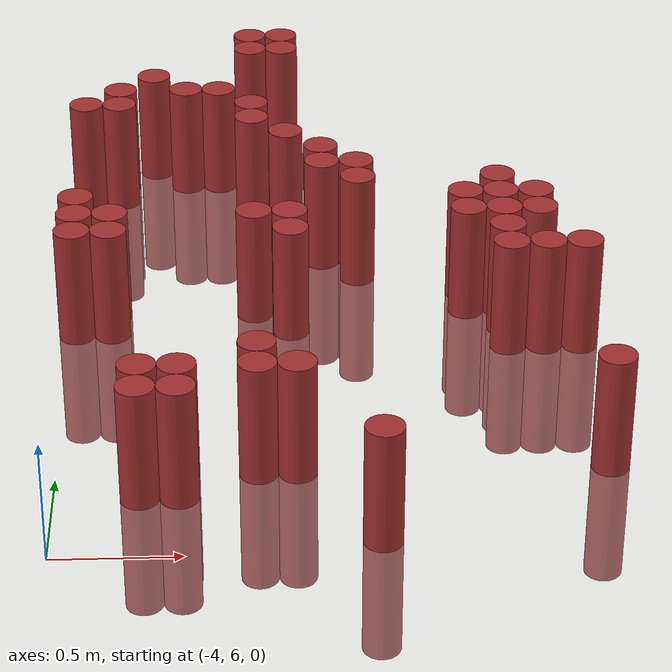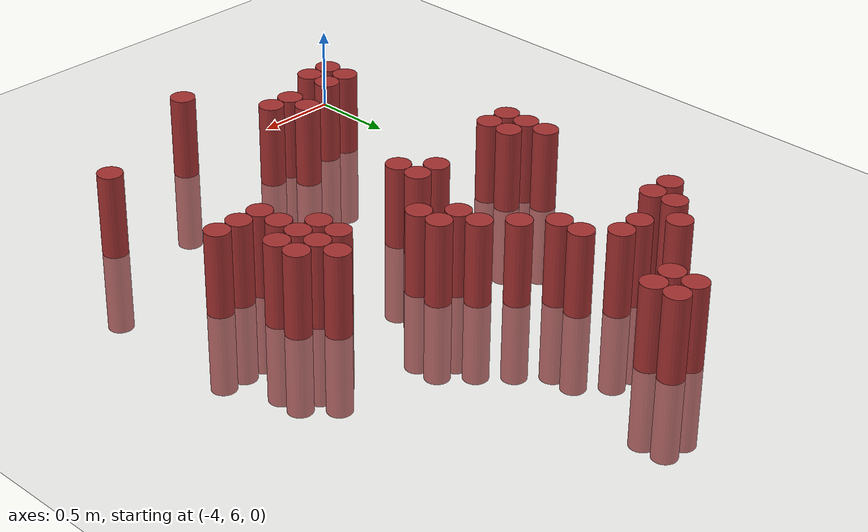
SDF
<sdf version="1.6">
 <world name="default">
  <model name="ground_plane">
   <static>1</static>
   <link name="link">
    <collision name="collision">
     <geometry><plane><normal>0 0 1</normal><size>100 100</size></plane></geometry>
     <surface><friction><ode><mu>100</mu><mu2>50</mu2></ode></friction></surface>
    </collision>
    <visual name="visual">
     <cast_shadows>0</cast_shadows>
     <geometry><plane><normal>0 0 1</normal><size>100 100</size></plane></geometry>
     <material>
      <script><uri>file://media/materials/scripts/gazebo.material</uri><name>Gazebo/Grey</name></script>
     </material>
    </visual>
   </link>
  </model>
  <model name="unit_cylinder_157">
   <static>1</static>
   <pose>-3.975000 7.575000 0.000000 0.000000 0.000000 0.000000</pose>
   <link name="link">
    <inertial>
     <mass>1</mass>
     <inertia><ixx>0.145833</ixx><ixy>0</ixy><ixz>0</ixz><iyy>0.145833</iyy><iyz>0</iyz><izz>0.125</izz></inertia>
    </inertial>
    <collision name="collision">
     <geometry><cylinder><radius>0.075000</radius><length>1</length></cylinder></geometry>
    </collision>
    <visual name="visual">
     <geometry><cylinder><radius>0.075000</radius><length>1</length></cylinder></geometry>
     <material>
      <ambient>0.648000 0.192000 0.192000 1</ambient>
      <diffuse>0.648000 0.192000 0.192000 1</diffuse>
     </material>
     <material>
      <script><name>Gazebo/Grey</name><uri>file://media/materials/scripts/gazebo.material</uri></script>
     </material>
    </visual>
   </link>
  </model>
  <model name="unit_cylinder_158">
   <static>1</static>
   <pose>-3.975000 7.725000 0.000000 0.000000 0.000000 0.000000</pose>
   <link name="link">
    <inertial>
     <mass>1</mass>
     <inertia><ixx>0.145833</ixx><ixy>0</ixy><ixz>0</ixz><iyy>0.145833</iyy><iyz>0</iyz><izz>0.125</izz></inertia>
    </inertial>
    <collision name="collision">
     <geometry><cylinder><radius>0.075000</radius><length>1</length></cylinder></geometry>
    </collision>
    <visual name="visual">
     <geometry><cylinder><radius>0.075000</radius><length>1</length></cylinder></geometry>
     <material>
      <ambient>0.648000 0.192000 0.192000 1</ambient>
      <diffuse>0.648000 0.192000 0.192000 1</diffuse>
     </material>
     <material>
      <script><name>Gazebo/Grey</name><uri>file://media/materials/scripts/gazebo.material</uri></script>
     </material>
    </visual>
   </link>
  </model>
  <model name="unit_cylinder_159">
   <static>1</static>
   <pose>-3.975000 7.875000 0.000000 0.000000 0.000000 0.000000</pose>
   <link name="link">
    <inertial>
     <mass>1</mass>
     <inertia><ixx>0.145833</ixx><ixy>0</ixy><ixz>0</ixz><iyy>0.145833</iyy><iyz>0</iyz><izz>0.125</izz></inertia>
    </inertial>
    <collision name="collision">
     <geometry><cylinder><radius>0.075000</radius><length>1</length></cylinder></geometry>
    </collision>
    <visual name="visual">
     <geometry><cylinder><radius>0.075000</radius><length>1</length></cylinder></geometry>
     <material>
      <ambient>0.648000 0.192000 0.192000 1</ambient>
      <diffuse>0.648000 0.192000 0.192000 1</diffuse>
     </material>
     <material>
      <script><name>Gazebo/Grey</name><uri>file://media/materials/scripts/gazebo.material</uri></script>
     </material>
    </visual>
   </link>
  </model>
  <model name="unit_cylinder_160">
   <static>1</static>
   <pose>-3.975000 8.775000 0.000000 0.000000 0.000000 0.000000</pose>
   <link name="link">
    <inertial>
     <mass>1</mass>
     <inertia><ixx>0.145833</ixx><ixy>0</ixy><ixz>0</ixz><iyy>0.145833</iyy><iyz>0</iyz><izz>0.125</izz></inertia>
    </inertial>
    <collision name="collision">
     <geometry><cylinder><radius>0.075000</radius><length>1</length></cylinder></geometry>
    </collision>
    <visual name="visual">
     <geometry><cylinder><radius>0.075000</radius><length>1</length></cylinder></geometry>
     <material>
      <ambient>0.648000 0.192000 0.192000 1</ambient>
      <diffuse>0.648000 0.192000 0.192000 1</diffuse>
     </material>
     <material>
      <script><name>Gazebo/Grey</name><uri>file://media/materials/scripts/gazebo.material</uri></script>
     </material>
    </visual>
   </link>
  </model>
  <model name="unit_cylinder_163">
   <static>1</static>
   <pose>-3.825000 7.575000 0.000000 0.000000 0.000000 0.000000</pose>
   <link name="link">
    <inertial>
     <mass>1</mass>
     <inertia><ixx>0.145833</ixx><ixy>0</ixy><ixz>0</ixz><iyy>0.145833</iyy><iyz>0</iyz><izz>0.125</izz></inertia>
    </inertial>
    <collision name="collision">
     <geometry><cylinder><radius>0.075000</radius><length>1</length></cylinder></geometry>
    </collision>
    <visual name="visual">
     <geometry><cylinder><radius>0.075000</radius><length>1</length></cylinder></geometry>
     <material>
      <ambient>0.648000 0.192000 0.192000 1</ambient>
      <diffuse>0.648000 0.192000 0.192000 1</diffuse>
     </material>
     <material>
      <script><name>Gazebo/Grey</name><uri>file://media/materials/scripts/gazebo.material</uri></script>
     </material>
    </visual>
   </link>
  </model>
  <model name="unit_cylinder_164">
   <static>1</static>
   <pose>-3.825000 7.725000 0.000000 0.000000 0.000000 0.000000</pose>
   <link name="link">
    <inertial>
     <mass>1</mass>
     <inertia><ixx>0.145833</ixx><ixy>0</ixy><ixz>0</ixz><iyy>0.145833</iyy><iyz>0</iyz><izz>0.125</izz></inertia>
    </inertial>
    <collision name="collision">
     <geometry><cylinder><radius>0.075000</radius><length>1</length></cylinder></geometry>
    </collision>
    <visual name="visual">
     <geometry><cylinder><radius>0.075000</radius><length>1</length></cylinder></geometry>
     <material>
      <ambient>0.648000 0.192000 0.192000 1</ambient>
      <diffuse>0.648000 0.192000 0.192000 1</diffuse>
     </material>
     <material>
      <script><name>Gazebo/Grey</name><uri>file://media/materials/scripts/gazebo.material</uri></script>
     </material>
    </visual>
   </link>
  </model>
  <model name="unit_cylinder_165">
   <static>1</static>
   <pose>-3.825000 8.775000 0.000000 0.000000 0.000000 0.000000</pose>
   <link name="link">
    <inertial>
     <mass>1</mass>
     <inertia><ixx>0.145833</ixx><ixy>0</ixy><ixz>0</ixz><iyy>0.145833</iyy><iyz>0</iyz><izz>0.125</izz></inertia>
    </inertial>
    <collision name="collision">
     <geometry><cylinder><radius>0.075000</radius><length>1</length></cylinder></geometry>
    </collision>
    <visual name="visual">
     <geometry><cylinder><radius>0.075000</radius><length>1</length></cylinder></geometry>
     <material>
      <ambient>0.648000 0.192000 0.192000 1</ambient>
      <diffuse>0.648000 0.192000 0.192000 1</diffuse>
     </material>
     <material>
      <script><name>Gazebo/Grey</name><uri>file://media/materials/scripts/gazebo.material</uri></script>
     </material>
    </visual>
   </link>
  </model>
  <model name="unit_cylinder_166">
   <static>1</static>
   <pose>-3.825000 8.925000 0.000000 0.000000 0.000000 0.000000</pose>
   <link name="link">
    <inertial>
     <mass>1</mass>
     <inertia><ixx>0.145833</ixx><ixy>0</ixy><ixz>0</ixz><iyy>0.145833</iyy><iyz>0</iyz><izz>0.125</izz></inertia>
    </inertial>
    <collision name="collision">
     <geometry><cylinder><radius>0.075000</radius><length>1</length></cylinder></geometry>
    </collision>
    <visual name="visual">
     <geometry><cylinder><radius>0.075000</radius><length>1</length></cylinder></geometry>
     <material>
      <ambient>0.648000 0.192000 0.192000 1</ambient>
      <diffuse>0.648000 0.192000 0.192000 1</diffuse>
     </material>
     <material>
      <script><name>Gazebo/Grey</name><uri>file://media/materials/scripts/gazebo.material</uri></script>
     </material>
    </visual>
   </link>
  </model>
  <model name="unit_cylinder_167">
   <static>1</static>
   <pose>-3.675000 6.375000 0.000000 0.000000 0.000000 0.000000</pose>
   <link name="link">
    <inertial>
     <mass>1</mass>
     <inertia><ixx>0.145833</ixx><ixy>0</ixy><ixz>0</ixz><iyy>0.145833</iyy><iyz>0</iyz><izz>0.125</izz></inertia>
    </inertial>
    <collision name="collision">
     <geometry><cylinder><radius>0.075000</radius><length>1</length></cylinder></geometry>
    </collision>
    <visual name="visual">
     <geometry><cylinder><radius>0.075000</radius><length>1</length></cylinder></geometry>
     <material>
      <ambient>0.648000 0.192000 0.192000 1</ambient>
      <diffuse>0.648000 0.192000 0.192000 1</diffuse>
     </material>
     <material>
      <script><name>Gazebo/Grey</name><uri>file://media/materials/scripts/gazebo.material</uri></script>
     </material>
    </visual>
   </link>
  </model>
  <model name="unit_cylinder_168">
   <static>1</static>
   <pose>-3.675000 6.525000 0.000000 0.000000 0.000000 0.000000</pose>
   <link name="link">
    <inertial>
     <mass>1</mass>
     <inertia><ixx>0.145833</ixx><ixy>0</ixy><ixz>0</ixz><iyy>0.145833</iyy><iyz>0</iyz><izz>0.125</izz></inertia>
    </inertial>
    <collision name="collision">
     <geometry><cylinder><radius>0.075000</radius><length>1</length></cylinder></geometry>
    </collision>
    <visual name="visual">
     <geometry><cylinder><radius>0.075000</radius><length>1</length></cylinder></geometry>
     <material>
      <ambient>0.648000 0.192000 0.192000 1</ambient>
      <diffuse>0.648000 0.192000 0.192000 1</diffuse>
     </material>
     <material>
      <script><name>Gazebo/Grey</name><uri>file://media/materials/scripts/gazebo.material</uri></script>
     </material>
    </visual>
   </link>
  </model>
  <model name="unit_cylinder_169">
   <static>1</static>
   <pose>-3.675000 9.075000 0.000000 0.000000 0.000000 0.000000</pose>
   <link name="link">
    <inertial>
     <mass>1</mass>
     <inertia><ixx>0.145833</ixx><ixy>0</ixy><ixz>0</ixz><iyy>0.145833</iyy><iyz>0</iyz><izz>0.125</izz></inertia>
    </inertial>
    <collision name="collision">
     <geometry><cylinder><radius>0.075000</radius><length>1</length></cylinder></geometry>
    </collision>
    <visual name="visual">
     <geometry><cylinder><radius>0.075000</radius><length>1</length></cylinder></geometry>
     <material>
      <ambient>0.648000 0.192000 0.192000 1</ambient>
      <diffuse>0.648000 0.192000 0.192000 1</diffuse>
     </material>
     <material>
      <script><name>Gazebo/Grey</name><uri>file://media/materials/scripts/gazebo.material</uri></script>
     </material>
    </visual>
   </link>
  </model>
  <model name="unit_cylinder_170">
   <static>1</static>
   <pose>-3.525000 6.375000 0.000000 0.000000 0.000000 0.000000</pose>
   <link name="link">
    <inertial>
     <mass>1</mass>
     <inertia><ixx>0.145833</ixx><ixy>0</ixy><ixz>0</ixz><iyy>0.145833</iyy><iyz>0</iyz><izz>0.125</izz></inertia>
    </inertial>
    <collision name="collision">
     <geometry><cylinder><radius>0.075000</radius><length>1</length></cylinder></geometry>
    </collision>
    <visual name="visual">
     <geometry><cylinder><radius>0.075000</radius><length>1</length></cylinder></geometry>
     <material>
      <ambient>0.648000 0.192000 0.192000 1</ambient>
      <diffuse>0.648000 0.192000 0.192000 1</diffuse>
     </material>
     <material>
      <script><name>Gazebo/Grey</name><uri>file://media/materials/scripts/gazebo.material</uri></script>
     </material>
    </visual>
   </link>
  </model>
  <model name="unit_cylinder_171">
   <static>1</static>
   <pose>-3.525000 6.525000 0.000000 0.000000 0.000000 0.000000</pose>
   <link name="link">
    <inertial>
     <mass>1</mass>
     <inertia><ixx>0.145833</ixx><ixy>0</ixy><ixz>0</ixz><iyy>0.145833</iyy><iyz>0</iyz><izz>0.125</izz></inertia>
    </inertial>
    <collision name="collision">
     <geometry><cylinder><radius>0.075000</radius><length>1</length></cylinder></geometry>
    </collision>
    <visual name="visual">
     <geometry><cylinder><radius>0.075000</radius><length>1</length></cylinder></geometry>
     <material>
      <ambient>0.648000 0.192000 0.192000 1</ambient>
      <diffuse>0.648000 0.192000 0.192000 1</diffuse>
     </material>
     <material>
      <script><name>Gazebo/Grey</name><uri>file://media/materials/scripts/gazebo.material</uri></script>
     </material>
    </visual>
   </link>
  </model>
  <model name="unit_cylinder_172">
   <static>1</static>
   <pose>-3.525000 8.925000 0.000000 0.000000 0.000000 0.000000</pose>
   <link name="link">
    <inertial>
     <mass>1</mass>
     <inertia><ixx>0.145833</ixx><ixy>0</ixy><ixz>0</ixz><iyy>0.145833</iyy><iyz>0</iyz><izz>0.125</izz></inertia>
    </inertial>
    <collision name="collision">
     <geometry><cylinder><radius>0.075000</radius><length>1</length></cylinder></geometry>
    </collision>
    <visual name="visual">
     <geometry><cylinder><radius>0.075000</radius><length>1</length></cylinder></geometry>
     <material>
      <ambient>0.648000 0.192000 0.192000 1</ambient>
      <diffuse>0.648000 0.192000 0.192000 1</diffuse>
     </material>
     <material>
      <script><name>Gazebo/Grey</name><uri>file://media/materials/scripts/gazebo.material</uri></script>
     </material>
    </visual>
   </link>
  </model>
  <model name="unit_cylinder_173">
   <static>1</static>
   <pose>-3.375000 8.925000 0.000000 0.000000 0.000000 0.000000</pose>
   <link name="link">
    <inertial>
     <mass>1</mass>
     <inertia><ixx>0.145833</ixx><ixy>0</ixy><ixz>0</ixz><iyy>0.145833</iyy><iyz>0</iyz><izz>0.125</izz></inertia>
    </inertial>
    <collision name="collision">
     <geometry><cylinder><radius>0.075000</radius><length>1</length></cylinder></geometry>
    </collision>
    <visual name="visual">
     <geometry><cylinder><radius>0.075000</radius><length>1</length></cylinder></geometry>
     <material>
      <ambient>0.648000 0.192000 0.192000 1</ambient>
      <diffuse>0.648000 0.192000 0.192000 1</diffuse>
     </material>
     <material>
      <script><name>Gazebo/Grey</name><uri>file://media/materials/scripts/gazebo.material</uri></script>
     </material>
    </visual>
   </link>
  </model>
  <model name="unit_cylinder_175">
   <static>1</static>
   <pose>-3.225000 6.525000 0.000000 0.000000 0.000000 0.000000</pose>
   <link name="link">
    <inertial>
     <mass>1</mass>
     <inertia><ixx>0.145833</ixx><ixy>0</ixy><ixz>0</ixz><iyy>0.145833</iyy><iyz>0</iyz><izz>0.125</izz></inertia>
    </inertial>
    <collision name="collision">
     <geometry><cylinder><radius>0.075000</radius><length>1</length></cylinder></geometry>
    </collision>
    <visual name="visual">
     <geometry><cylinder><radius>0.075000</radius><length>1</length></cylinder></geometry>
     <material>
      <ambient>0.648000 0.192000 0.192000 1</ambient>
      <diffuse>0.648000 0.192000 0.192000 1</diffuse>
     </material>
     <material>
      <script><name>Gazebo/Grey</name><uri>file://media/materials/scripts/gazebo.material</uri></script>
     </material>
    </visual>
   </link>
  </model>
  <model name="unit_cylinder_176">
   <static>1</static>
   <pose>-3.225000 6.675000 0.000000 0.000000 0.000000 0.000000</pose>
   <link name="link">
    <inertial>
     <mass>1</mass>
     <inertia><ixx>0.145833</ixx><ixy>0</ixy><ixz>0</ixz><iyy>0.145833</iyy><iyz>0</iyz><izz>0.125</izz></inertia>
    </inertial>
    <collision name="collision">
     <geometry><cylinder><radius>0.075000</radius><length>1</length></cylinder></geometry>
    </collision>
    <visual name="visual">
     <geometry><cylinder><radius>0.075000</radius><length>1</length></cylinder></geometry>
     <material>
      <ambient>0.648000 0.192000 0.192000 1</ambient>
      <diffuse>0.648000 0.192000 0.192000 1</diffuse>
     </material>
     <material>
      <script><name>Gazebo/Grey</name><uri>file://media/materials/scripts/gazebo.material</uri></script>
     </material>
    </visual>
   </link>
  </model>
  <model name="unit_cylinder_177">
   <static>1</static>
   <pose>-3.225000 7.725000 0.000000 0.000000 0.000000 0.000000</pose>
   <link name="link">
    <inertial>
     <mass>1</mass>
     <inertia><ixx>0.145833</ixx><ixy>0</ixy><ixz>0</ixz><iyy>0.145833</iyy><iyz>0</iyz><izz>0.125</izz></inertia>
    </inertial>
    <collision name="collision">
     <geometry><cylinder><radius>0.075000</radius><length>1</length></cylinder></geometry>
    </collision>
    <visual name="visual">
     <geometry><cylinder><radius>0.075000</radius><length>1</length></cylinder></geometry>
     <material>
      <ambient>0.648000 0.192000 0.192000 1</ambient>
      <diffuse>0.648000 0.192000 0.192000 1</diffuse>
     </material>
     <material>
      <script><name>Gazebo/Grey</name><uri>file://media/materials/scripts/gazebo.material</uri></script>
     </material>
    </visual>
   </link>
  </model>
  <model name="unit_cylinder_178">
   <static>1</static>
   <pose>-3.225000 8.625000 0.000000 0.000000 0.000000 0.000000</pose>
   <link name="link">
    <inertial>
     <mass>1</mass>
     <inertia><ixx>0.145833</ixx><ixy>0</ixy><ixz>0</ixz><iyy>0.145833</iyy><iyz>0</iyz><izz>0.125</izz></inertia>
    </inertial>
    <collision name="collision">
     <geometry><cylinder><radius>0.075000</radius><length>1</length></cylinder></geometry>
    </collision>
    <visual name="visual">
     <geometry><cylinder><radius>0.075000</radius><length>1</length></cylinder></geometry>
     <material>
      <ambient>0.648000 0.192000 0.192000 1</ambient>
      <diffuse>0.648000 0.192000 0.192000 1</diffuse>
     </material>
     <material>
      <script><name>Gazebo/Grey</name><uri>file://media/materials/scripts/gazebo.material</uri></script>
     </material>
    </visual>
   </link>
  </model>
  <model name="unit_cylinder_179">
   <static>1</static>
   <pose>-3.225000 8.775000 0.000000 0.000000 0.000000 0.000000</pose>
   <link name="link">
    <inertial>
     <mass>1</mass>
     <inertia><ixx>0.145833</ixx><ixy>0</ixy><ixz>0</ixz><iyy>0.145833</iyy><iyz>0</iyz><izz>0.125</izz></inertia>
    </inertial>
    <collision name="collision">
     <geometry><cylinder><radius>0.075000</radius><length>1</length></cylinder></geometry>
    </collision>
    <visual name="visual">
     <geometry><cylinder><radius>0.075000</radius><length>1</length></cylinder></geometry>
     <material>
      <ambient>0.648000 0.192000 0.192000 1</ambient>
      <diffuse>0.648000 0.192000 0.192000 1</diffuse>
     </material>
     <material>
      <script><name>Gazebo/Grey</name><uri>file://media/materials/scripts/gazebo.material</uri></script>
     </material>
    </visual>
   </link>
  </model>
  <model name="unit_cylinder_180">
   <static>1</static>
   <pose>-3.225000 9.375000 0.000000 0.000000 0.000000 0.000000</pose>
   <link name="link">
    <inertial>
     <mass>1</mass>
     <inertia><ixx>0.145833</ixx><ixy>0</ixy><ixz>0</ixz><iyy>0.145833</iyy><iyz>0</iyz><izz>0.125</izz></inertia>
    </inertial>
    <collision name="collision">
     <geometry><cylinder><radius>0.075000</radius><length>1</length></cylinder></geometry>
    </collision>
    <visual name="visual">
     <geometry><cylinder><radius>0.075000</radius><length>1</length></cylinder></geometry>
     <material>
      <ambient>0.648000 0.192000 0.192000 1</ambient>
      <diffuse>0.648000 0.192000 0.192000 1</diffuse>
     </material>
     <material>
      <script><name>Gazebo/Grey</name><uri>file://media/materials/scripts/gazebo.material</uri></script>
     </material>
    </visual>
   </link>
  </model>
  <model name="unit_cylinder_181">
   <static>1</static>
   <pose>-3.225000 9.525000 0.000000 0.000000 0.000000 0.000000</pose>
   <link name="link">
    <inertial>
     <mass>1</mass>
     <inertia><ixx>0.145833</ixx><ixy>0</ixy><ixz>0</ixz><iyy>0.145833</iyy><iyz>0</iyz><izz>0.125</izz></inertia>
    </inertial>
    <collision name="collision">
     <geometry><cylinder><radius>0.075000</radius><length>1</length></cylinder></geometry>
    </collision>
    <visual name="visual">
     <geometry><cylinder><radius>0.075000</radius><length>1</length></cylinder></geometry>
     <material>
      <ambient>0.648000 0.192000 0.192000 1</ambient>
      <diffuse>0.648000 0.192000 0.192000 1</diffuse>
     </material>
     <material>
      <script><name>Gazebo/Grey</name><uri>file://media/materials/scripts/gazebo.material</uri></script>
     </material>
    </visual>
   </link>
  </model>
  <model name="unit_cylinder_185">
   <static>1</static>
   <pose>-3.075000 6.525000 0.000000 0.000000 0.000000 0.000000</pose>
   <link name="link">
    <inertial>
     <mass>1</mass>
     <inertia><ixx>0.145833</ixx><ixy>0</ixy><ixz>0</ixz><iyy>0.145833</iyy><iyz>0</iyz><izz>0.125</izz></inertia>
    </inertial>
    <collision name="collision">
     <geometry><cylinder><radius>0.075000</radius><length>1</length></cylinder></geometry>
    </collision>
    <visual name="visual">
     <geometry><cylinder><radius>0.075000</radius><length>1</length></cylinder></geometry>
     <material>
      <ambient>0.648000 0.192000 0.192000 1</ambient>
      <diffuse>0.648000 0.192000 0.192000 1</diffuse>
     </material>
     <material>
      <script><name>Gazebo/Grey</name><uri>file://media/materials/scripts/gazebo.material</uri></script>
     </material>
    </visual>
   </link>
  </model>
  <model name="unit_cylinder_186">
   <static>1</static>
   <pose>-3.075000 7.575000 0.000000 0.000000 0.000000 0.000000</pose>
   <link name="link">
    <inertial>
     <mass>1</mass>
     <inertia><ixx>0.145833</ixx><ixy>0</ixy><ixz>0</ixz><iyy>0.145833</iyy><iyz>0</iyz><izz>0.125</izz></inertia>
    </inertial>
    <collision name="collision">
     <geometry><cylinder><radius>0.075000</radius><length>1</length></cylinder></geometry>
    </collision>
    <visual name="visual">
     <geometry><cylinder><radius>0.075000</radius><length>1</length></cylinder></geometry>
     <material>
      <ambient>0.648000 0.192000 0.192000 1</ambient>
      <diffuse>0.648000 0.192000 0.192000 1</diffuse>
     </material>
     <material>
      <script><name>Gazebo/Grey</name><uri>file://media/materials/scripts/gazebo.material</uri></script>
     </material>
    </visual>
   </link>
  </model>
  <model name="unit_cylinder_187">
   <static>1</static>
   <pose>-3.075000 7.725000 0.000000 0.000000 0.000000 0.000000</pose>
   <link name="link">
    <inertial>
     <mass>1</mass>
     <inertia><ixx>0.145833</ixx><ixy>0</ixy><ixz>0</ixz><iyy>0.145833</iyy><iyz>0</iyz><izz>0.125</izz></inertia>
    </inertial>
    <collision name="collision">
     <geometry><cylinder><radius>0.075000</radius><length>1</length></cylinder></geometry>
    </collision>
    <visual name="visual">
     <geometry><cylinder><radius>0.075000</radius><length>1</length></cylinder></geometry>
     <material>
      <ambient>0.648000 0.192000 0.192000 1</ambient>
      <diffuse>0.648000 0.192000 0.192000 1</diffuse>
     </material>
     <material>
      <script><name>Gazebo/Grey</name><uri>file://media/materials/scripts/gazebo.material</uri></script>
     </material>
    </visual>
   </link>
  </model>
  <model name="unit_cylinder_188">
   <static>1</static>
   <pose>-3.075000 8.475000 0.000000 0.000000 0.000000 0.000000</pose>
   <link name="link">
    <inertial>
     <mass>1</mass>
     <inertia><ixx>0.145833</ixx><ixy>0</ixy><ixz>0</ixz><iyy>0.145833</iyy><iyz>0</iyz><izz>0.125</izz></inertia>
    </inertial>
    <collision name="collision">
     <geometry><cylinder><radius>0.075000</radius><length>1</length></cylinder></geometry>
    </collision>
    <visual name="visual">
     <geometry><cylinder><radius>0.075000</radius><length>1</length></cylinder></geometry>
     <material>
      <ambient>0.648000 0.192000 0.192000 1</ambient>
      <diffuse>0.648000 0.192000 0.192000 1</diffuse>
     </material>
     <material>
      <script><name>Gazebo/Grey</name><uri>file://media/materials/scripts/gazebo.material</uri></script>
     </material>
    </visual>
   </link>
  </model>
  <model name="unit_cylinder_189">
   <static>1</static>
   <pose>-3.075000 9.375000 0.000000 0.000000 0.000000 0.000000</pose>
   <link name="link">
    <inertial>
     <mass>1</mass>
     <inertia><ixx>0.145833</ixx><ixy>0</ixy><ixz>0</ixz><iyy>0.145833</iyy><iyz>0</iyz><izz>0.125</izz></inertia>
    </inertial>
    <collision name="collision">
     <geometry><cylinder><radius>0.075000</radius><length>1</length></cylinder></geometry>
    </collision>
    <visual name="visual">
     <geometry><cylinder><radius>0.075000</radius><length>1</length></cylinder></geometry>
     <material>
      <ambient>0.648000 0.192000 0.192000 1</ambient>
      <diffuse>0.648000 0.192000 0.192000 1</diffuse>
     </material>
     <material>
      <script><name>Gazebo/Grey</name><uri>file://media/materials/scripts/gazebo.material</uri></script>
     </material>
    </visual>
   </link>
  </model>
  <model name="unit_cylinder_190">
   <static>1</static>
   <pose>-3.075000 9.525000 0.000000 0.000000 0.000000 0.000000</pose>
   <link name="link">
    <inertial>
     <mass>1</mass>
     <inertia><ixx>0.145833</ixx><ixy>0</ixy><ixz>0</ixz><iyy>0.145833</iyy><iyz>0</iyz><izz>0.125</izz></inertia>
    </inertial>
    <collision name="collision">
     <geometry><cylinder><radius>0.075000</radius><length>1</length></cylinder></geometry>
    </collision>
    <visual name="visual">
     <geometry><cylinder><radius>0.075000</radius><length>1</length></cylinder></geometry>
     <material>
      <ambient>0.648000 0.192000 0.192000 1</ambient>
      <diffuse>0.648000 0.192000 0.192000 1</diffuse>
     </material>
     <material>
      <script><name>Gazebo/Grey</name><uri>file://media/materials/scripts/gazebo.material</uri></script>
     </material>
    </visual>
   </link>
  </model>
  <model name="unit_cylinder_195">
   <static>1</static>
   <pose>-2.925000 8.175000 0.000000 0.000000 0.000000 0.000000</pose>
   <link name="link">
    <inertial>
     <mass>1</mass>
     <inertia><ixx>0.145833</ixx><ixy>0</ixy><ixz>0</ixz><iyy>0.145833</iyy><iyz>0</iyz><izz>0.125</izz></inertia>
    </inertial>
    <collision name="collision">
     <geometry><cylinder><radius>0.075000</radius><length>1</length></cylinder></geometry>
    </collision>
    <visual name="visual">
     <geometry><cylinder><radius>0.075000</radius><length>1</length></cylinder></geometry>
     <material>
      <ambient>0.648000 0.192000 0.192000 1</ambient>
      <diffuse>0.648000 0.192000 0.192000 1</diffuse>
     </material>
     <material>
      <script><name>Gazebo/Grey</name><uri>file://media/materials/scripts/gazebo.material</uri></script>
     </material>
    </visual>
   </link>
  </model>
  <model name="unit_cylinder_196">
   <static>1</static>
   <pose>-2.925000 8.325000 0.000000 0.000000 0.000000 0.000000</pose>
   <link name="link">
    <inertial>
     <mass>1</mass>
     <inertia><ixx>0.145833</ixx><ixy>0</ixy><ixz>0</ixz><iyy>0.145833</iyy><iyz>0</iyz><izz>0.125</izz></inertia>
    </inertial>
    <collision name="collision">
     <geometry><cylinder><radius>0.075000</radius><length>1</length></cylinder></geometry>
    </collision>
    <visual name="visual">
     <geometry><cylinder><radius>0.075000</radius><length>1</length></cylinder></geometry>
     <material>
      <ambient>0.648000 0.192000 0.192000 1</ambient>
      <diffuse>0.648000 0.192000 0.192000 1</diffuse>
     </material>
     <material>
      <script><name>Gazebo/Grey</name><uri>file://media/materials/scripts/gazebo.material</uri></script>
     </material>
    </visual>
   </link>
  </model>
  <model name="unit_cylinder_201">
   <static>1</static>
   <pose>-2.775000 6.075000 0.000000 0.000000 0.000000 0.000000</pose>
   <link name="link">
    <inertial>
     <mass>1</mass>
     <inertia><ixx>0.145833</ixx><ixy>0</ixy><ixz>0</ixz><iyy>0.145833</iyy><iyz>0</iyz><izz>0.125</izz></inertia>
    </inertial>
    <collision name="collision">
     <geometry><cylinder><radius>0.075000</radius><length>1</length></cylinder></geometry>
    </collision>
    <visual name="visual">
     <geometry><cylinder><radius>0.075000</radius><length>1</length></cylinder></geometry>
     <material>
      <ambient>0.648000 0.192000 0.192000 1</ambient>
      <diffuse>0.648000 0.192000 0.192000 1</diffuse>
     </material>
     <material>
      <script><name>Gazebo/Grey</name><uri>file://media/materials/scripts/gazebo.material</uri></script>
     </material>
    </visual>
   </link>
  </model>
  <model name="unit_cylinder_202">
   <static>1</static>
   <pose>-2.775000 8.025000 0.000000 0.000000 0.000000 0.000000</pose>
   <link name="link">
    <inertial>
     <mass>1</mass>
     <inertia><ixx>0.145833</ixx><ixy>0</ixy><ixz>0</ixz><iyy>0.145833</iyy><iyz>0</iyz><izz>0.125</izz></inertia>
    </inertial>
    <collision name="collision">
     <geometry><cylinder><radius>0.075000</radius><length>1</length></cylinder></geometry>
    </collision>
    <visual name="visual">
     <geometry><cylinder><radius>0.075000</radius><length>1</length></cylinder></geometry>
     <material>
      <ambient>0.648000 0.192000 0.192000 1</ambient>
      <diffuse>0.648000 0.192000 0.192000 1</diffuse>
     </material>
     <material>
      <script><name>Gazebo/Grey</name><uri>file://media/materials/scripts/gazebo.material</uri></script>
     </material>
    </visual>
   </link>
  </model>
  <model name="unit_cylinder_203">
   <static>1</static>
   <pose>-2.775000 8.175000 0.000000 0.000000 0.000000 0.000000</pose>
   <link name="link">
    <inertial>
     <mass>1</mass>
     <inertia><ixx>0.145833</ixx><ixy>0</ixy><ixz>0</ixz><iyy>0.145833</iyy><iyz>0</iyz><izz>0.125</izz></inertia>
    </inertial>
    <collision name="collision">
     <geometry><cylinder><radius>0.075000</radius><length>1</length></cylinder></geometry>
    </collision>
    <visual name="visual">
     <geometry><cylinder><radius>0.075000</radius><length>1</length></cylinder></geometry>
     <material>
      <ambient>0.648000 0.192000 0.192000 1</ambient>
      <diffuse>0.648000 0.192000 0.192000 1</diffuse>
     </material>
     <material>
      <script><name>Gazebo/Grey</name><uri>file://media/materials/scripts/gazebo.material</uri></script>
     </material>
    </visual>
   </link>
  </model>
  <model name="unit_cylinder_206">
   <static>1</static>
   <pose>-2.325000 7.725000 0.000000 0.000000 0.000000 0.000000</pose>
   <link name="link">
    <inertial>
     <mass>1</mass>
     <inertia><ixx>0.145833</ixx><ixy>0</ixy><ixz>0</ixz><iyy>0.145833</iyy><iyz>0</iyz><izz>0.125</izz></inertia>
    </inertial>
    <collision name="collision">
     <geometry><cylinder><radius>0.075000</radius><length>1</length></cylinder></geometry>
    </collision>
    <visual name="visual">
     <geometry><cylinder><radius>0.075000</radius><length>1</length></cylinder></geometry>
     <material>
      <ambient>0.648000 0.192000 0.192000 1</ambient>
      <diffuse>0.648000 0.192000 0.192000 1</diffuse>
     </material>
     <material>
      <script><name>Gazebo/Grey</name><uri>file://media/materials/scripts/gazebo.material</uri></script>
     </material>
    </visual>
   </link>
  </model>
  <model name="unit_cylinder_207">
   <static>1</static>
   <pose>-2.325000 7.875000 0.000000 0.000000 0.000000 0.000000</pose>
   <link name="link">
    <inertial>
     <mass>1</mass>
     <inertia><ixx>0.145833</ixx><ixy>0</ixy><ixz>0</ixz><iyy>0.145833</iyy><iyz>0</iyz><izz>0.125</izz></inertia>
    </inertial>
    <collision name="collision">
     <geometry><cylinder><radius>0.075000</radius><length>1</length></cylinder></geometry>
    </collision>
    <visual name="visual">
     <geometry><cylinder><radius>0.075000</radius><length>1</length></cylinder></geometry>
     <material>
      <ambient>0.648000 0.192000 0.192000 1</ambient>
      <diffuse>0.648000 0.192000 0.192000 1</diffuse>
     </material>
     <material>
      <script><name>Gazebo/Grey</name><uri>file://media/materials/scripts/gazebo.material</uri></script>
     </material>
    </visual>
   </link>
  </model>
  <model name="unit_cylinder_208">
   <static>1</static>
   <pose>-2.175000 7.425000 0.000000 0.000000 0.000000 0.000000</pose>
   <link name="link">
    <inertial>
     <mass>1</mass>
     <inertia><ixx>0.145833</ixx><ixy>0</ixy><ixz>0</ixz><iyy>0.145833</iyy><iyz>0</iyz><izz>0.125</izz></inertia>
    </inertial>
    <collision name="collision">
     <geometry><cylinder><radius>0.075000</radius><length>1</length></cylinder></geometry>
    </collision>
    <visual name="visual">
     <geometry><cylinder><radius>0.075000</radius><length>1</length></cylinder></geometry>
     <material>
      <ambient>0.648000 0.192000 0.192000 1</ambient>
      <diffuse>0.648000 0.192000 0.192000 1</diffuse>
     </material>
     <material>
      <script><name>Gazebo/Grey</name><uri>file://media/materials/scripts/gazebo.material</uri></script>
     </material>
    </visual>
   </link>
  </model>
  <model name="unit_cylinder_209">
   <static>1</static>
   <pose>-2.175000 7.575000 0.000000 0.000000 0.000000 0.000000</pose>
   <link name="link">
    <inertial>
     <mass>1</mass>
     <inertia><ixx>0.145833</ixx><ixy>0</ixy><ixz>0</ixz><iyy>0.145833</iyy><iyz>0</iyz><izz>0.125</izz></inertia>
    </inertial>
    <collision name="collision">
     <geometry><cylinder><radius>0.075000</radius><length>1</length></cylinder></geometry>
    </collision>
    <visual name="visual">
     <geometry><cylinder><radius>0.075000</radius><length>1</length></cylinder></geometry>
     <material>
      <ambient>0.648000 0.192000 0.192000 1</ambient>
      <diffuse>0.648000 0.192000 0.192000 1</diffuse>
     </material>
     <material>
      <script><name>Gazebo/Grey</name><uri>file://media/materials/scripts/gazebo.material</uri></script>
     </material>
    </visual>
   </link>
  </model>
  <model name="unit_cylinder_210">
   <static>1</static>
   <pose>-2.175000 7.725000 0.000000 0.000000 0.000000 0.000000</pose>
   <link name="link">
    <inertial>
     <mass>1</mass>
     <inertia><ixx>0.145833</ixx><ixy>0</ixy><ixz>0</ixz><iyy>0.145833</iyy><iyz>0</iyz><izz>0.125</izz></inertia>
    </inertial>
    <collision name="collision">
     <geometry><cylinder><radius>0.075000</radius><length>1</length></cylinder></geometry>
    </collision>
    <visual name="visual">
     <geometry><cylinder><radius>0.075000</radius><length>1</length></cylinder></geometry>
     <material>
      <ambient>0.648000 0.192000 0.192000 1</ambient>
      <diffuse>0.648000 0.192000 0.192000 1</diffuse>
     </material>
     <material>
      <script><name>Gazebo/Grey</name><uri>file://media/materials/scripts/gazebo.material</uri></script>
     </material>
    </visual>
   </link>
  </model>
  <model name="unit_cylinder_211">
   <static>1</static>
   <pose>-2.175000 7.875000 0.000000 0.000000 0.000000 0.000000</pose>
   <link name="link">
    <inertial>
     <mass>1</mass>
     <inertia><ixx>0.145833</ixx><ixy>0</ixy><ixz>0</ixz><iyy>0.145833</iyy><iyz>0</iyz><izz>0.125</izz></inertia>
    </inertial>
    <collision name="collision">
     <geometry><cylinder><radius>0.075000</radius><length>1</length></cylinder></geometry>
    </collision>
    <visual name="visual">
     <geometry><cylinder><radius>0.075000</radius><length>1</length></cylinder></geometry>
     <material>
      <ambient>0.648000 0.192000 0.192000 1</ambient>
      <diffuse>0.648000 0.192000 0.192000 1</diffuse>
     </material>
     <material>
      <script><name>Gazebo/Grey</name><uri>file://media/materials/scripts/gazebo.material</uri></script>
     </material>
    </visual>
   </link>
  </model>
  <model name="unit_cylinder_212">
   <static>1</static>
   <pose>-2.175000 8.025000 0.000000 0.000000 0.000000 0.000000</pose>
   <link name="link">
    <inertial>
     <mass>1</mass>
     <inertia><ixx>0.145833</ixx><ixy>0</ixy><ixz>0</ixz><iyy>0.145833</iyy><iyz>0</iyz><izz>0.125</izz></inertia>
    </inertial>
    <collision name="collision">
     <geometry><cylinder><radius>0.075000</radius><length>1</length></cylinder></geometry>
    </collision>
    <visual name="visual">
     <geometry><cylinder><radius>0.075000</radius><length>1</length></cylinder></geometry>
     <material>
      <ambient>0.648000 0.192000 0.192000 1</ambient>
      <diffuse>0.648000 0.192000 0.192000 1</diffuse>
     </material>
     <material>
      <script><name>Gazebo/Grey</name><uri>file://media/materials/scripts/gazebo.material</uri></script>
     </material>
    </visual>
   </link>
  </model>
  <model name="unit_cylinder_213">
   <static>1</static>
   <pose>-2.025000 7.425000 0.000000 0.000000 0.000000 0.000000</pose>
   <link name="link">
    <inertial>
     <mass>1</mass>
     <inertia><ixx>0.145833</ixx><ixy>0</ixy><ixz>0</ixz><iyy>0.145833</iyy><iyz>0</iyz><izz>0.125</izz></inertia>
    </inertial>
    <collision name="collision">
     <geometry><cylinder><radius>0.075000</radius><length>1</length></cylinder></geometry>
    </collision>
    <visual name="visual">
     <geometry><cylinder><radius>0.075000</radius><length>1</length></cylinder></geometry>
     <material>
      <ambient>0.648000 0.192000 0.192000 1</ambient>
      <diffuse>0.648000 0.192000 0.192000 1</diffuse>
     </material>
     <material>
      <script><name>Gazebo/Grey</name><uri>file://media/materials/scripts/gazebo.material</uri></script>
     </material>
    </visual>
   </link>
  </model>
  <model name="unit_cylinder_214">
   <static>1</static>
   <pose>-2.025000 7.725000 0.000000 0.000000 0.000000 0.000000</pose>
   <link name="link">
    <inertial>
     <mass>1</mass>
     <inertia><ixx>0.145833</ixx><ixy>0</ixy><ixz>0</ixz><iyy>0.145833</iyy><iyz>0</iyz><izz>0.125</izz></inertia>
    </inertial>
    <collision name="collision">
     <geometry><cylinder><radius>0.075000</radius><length>1</length></cylinder></geometry>
    </collision>
    <visual name="visual">
     <geometry><cylinder><radius>0.075000</radius><length>1</length></cylinder></geometry>
     <material>
      <ambient>0.648000 0.192000 0.192000 1</ambient>
      <diffuse>0.648000 0.192000 0.192000 1</diffuse>
     </material>
     <material>
      <script><name>Gazebo/Grey</name><uri>file://media/materials/scripts/gazebo.material</uri></script>
     </material>
    </visual>
   </link>
  </model>
  <model name="unit_cylinder_215">
   <static>1</static>
   <pose>-2.025000 7.875000 0.000000 0.000000 0.000000 0.000000</pose>
   <link name="link">
    <inertial>
     <mass>1</mass>
     <inertia><ixx>0.145833</ixx><ixy>0</ixy><ixz>0</ixz><iyy>0.145833</iyy><iyz>0</iyz><izz>0.125</izz></inertia>
    </inertial>
    <collision name="collision">
     <geometry><cylinder><radius>0.075000</radius><length>1</length></cylinder></geometry>
    </collision>
    <visual name="visual">
     <geometry><cylinder><radius>0.075000</radius><length>1</length></cylinder></geometry>
     <material>
      <ambient>0.648000 0.192000 0.192000 1</ambient>
      <diffuse>0.648000 0.192000 0.192000 1</diffuse>
     </material>
     <material>
      <script><name>Gazebo/Grey</name><uri>file://media/materials/scripts/gazebo.material</uri></script>
     </material>
    </visual>
   </link>
  </model>
  <model name="unit_cylinder_217">
   <static>1</static>
   <pose>-1.875000 6.525000 0.000000 0.000000 0.000000 0.000000</pose>
   <link name="link">
    <inertial>
     <mass>1</mass>
     <inertia><ixx>0.145833</ixx><ixy>0</ixy><ixz>0</ixz><iyy>0.145833</iyy><iyz>0</iyz><izz>0.125</izz></inertia>
    </inertial>
    <collision name="collision">
     <geometry><cylinder><radius>0.075000</radius><length>1</length></cylinder></geometry>
    </collision>
    <visual name="visual">
     <geometry><cylinder><radius>0.075000</radius><length>1</length></cylinder></geometry>
     <material>
      <ambient>0.648000 0.192000 0.192000 1</ambient>
      <diffuse>0.648000 0.192000 0.192000 1</diffuse>
     </material>
     <material>
      <script><name>Gazebo/Grey</name><uri>file://media/materials/scripts/gazebo.material</uri></script>
     </material>
    </visual>
   </link>
  </model>
  <model name="unit_cylinder_218">
   <static>1</static>
   <pose>-1.875000 7.425000 0.000000 0.000000 0.000000 0.000000</pose>
   <link name="link">
    <inertial>
     <mass>1</mass>
     <inertia><ixx>0.145833</ixx><ixy>0</ixy><ixz>0</ixz><iyy>0.145833</iyy><iyz>0</iyz><izz>0.125</izz></inertia>
    </inertial>
    <collision name="collision">
     <geometry><cylinder><radius>0.075000</radius><length>1</length></cylinder></geometry>
    </collision>
    <visual name="visual">
     <geometry><cylinder><radius>0.075000</radius><length>1</length></cylinder></geometry>
     <material>
      <ambient>0.648000 0.192000 0.192000 1</ambient>
      <diffuse>0.648000 0.192000 0.192000 1</diffuse>
     </material>
     <material>
      <script><name>Gazebo/Grey</name><uri>file://media/materials/scripts/gazebo.material</uri></script>
     </material>
    </visual>
   </link>
  </model>
 </world>
</sdf>
